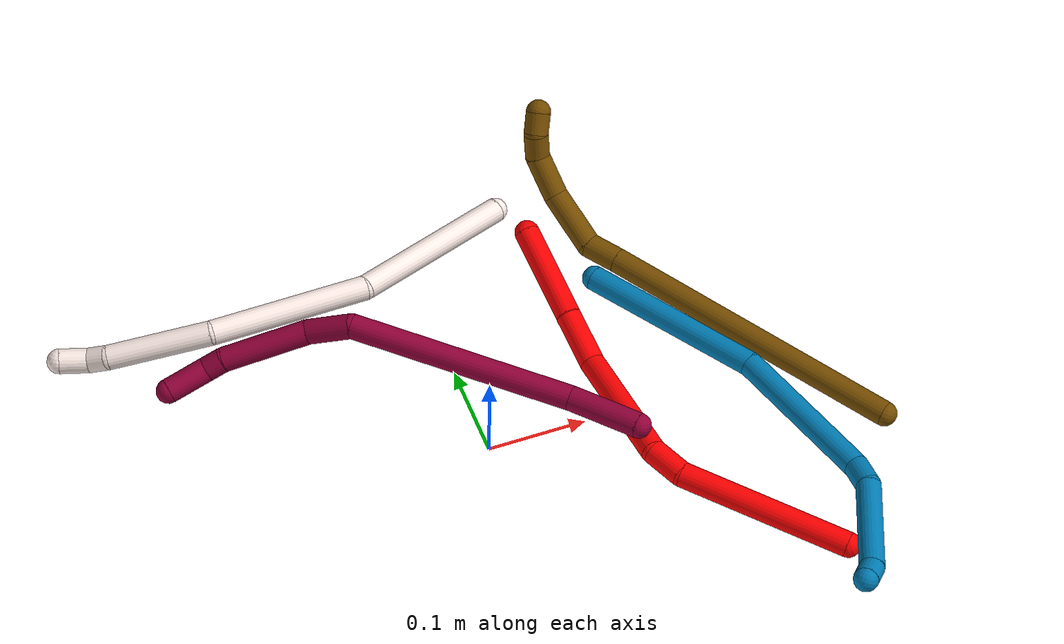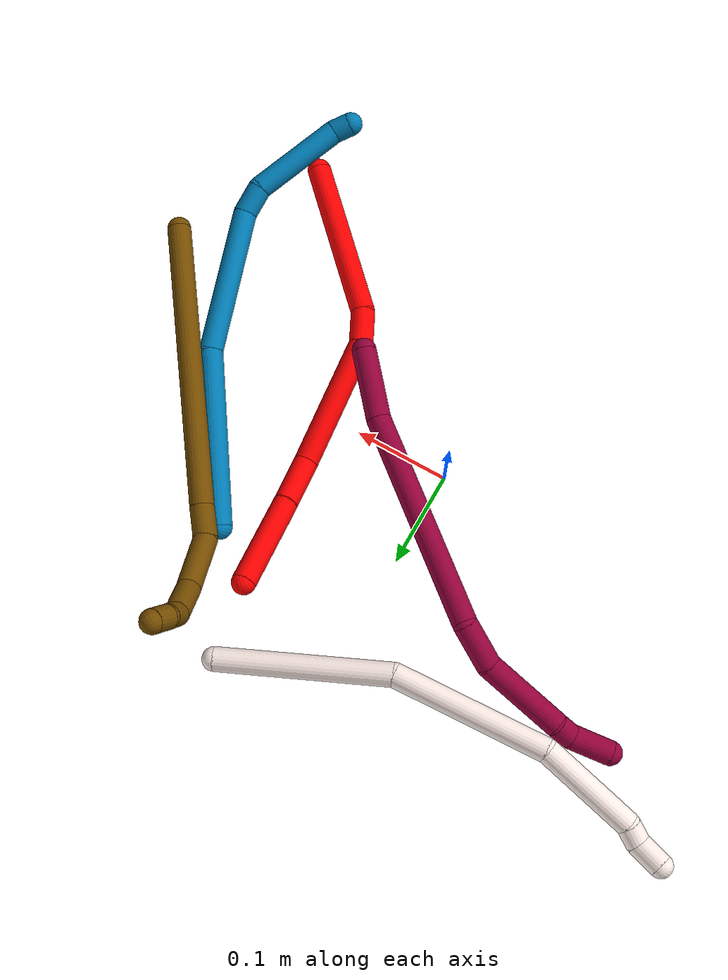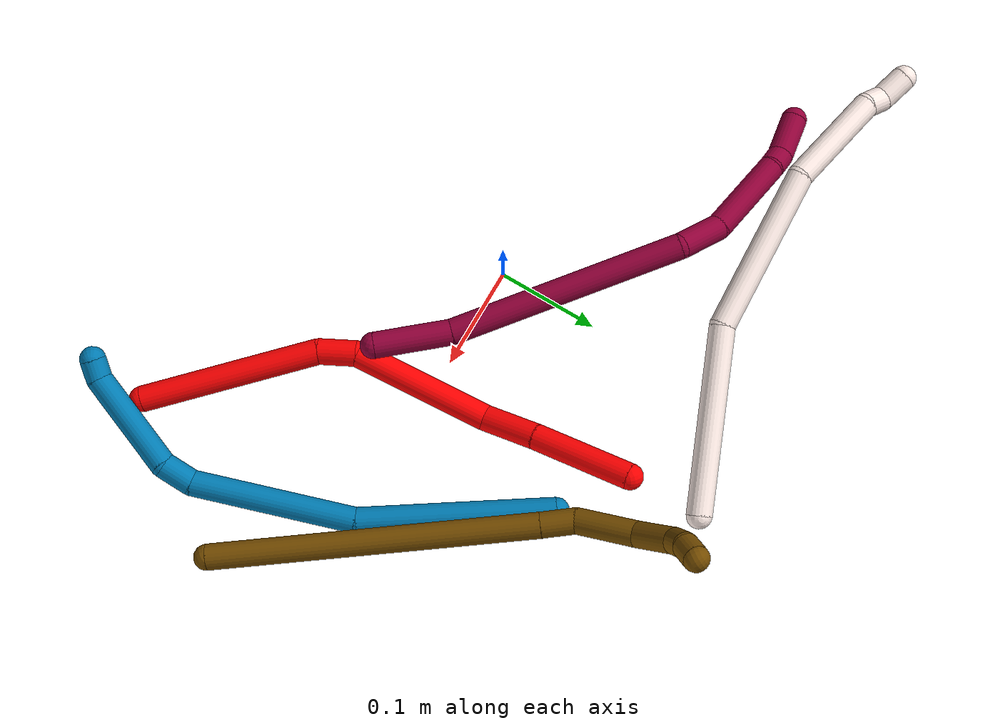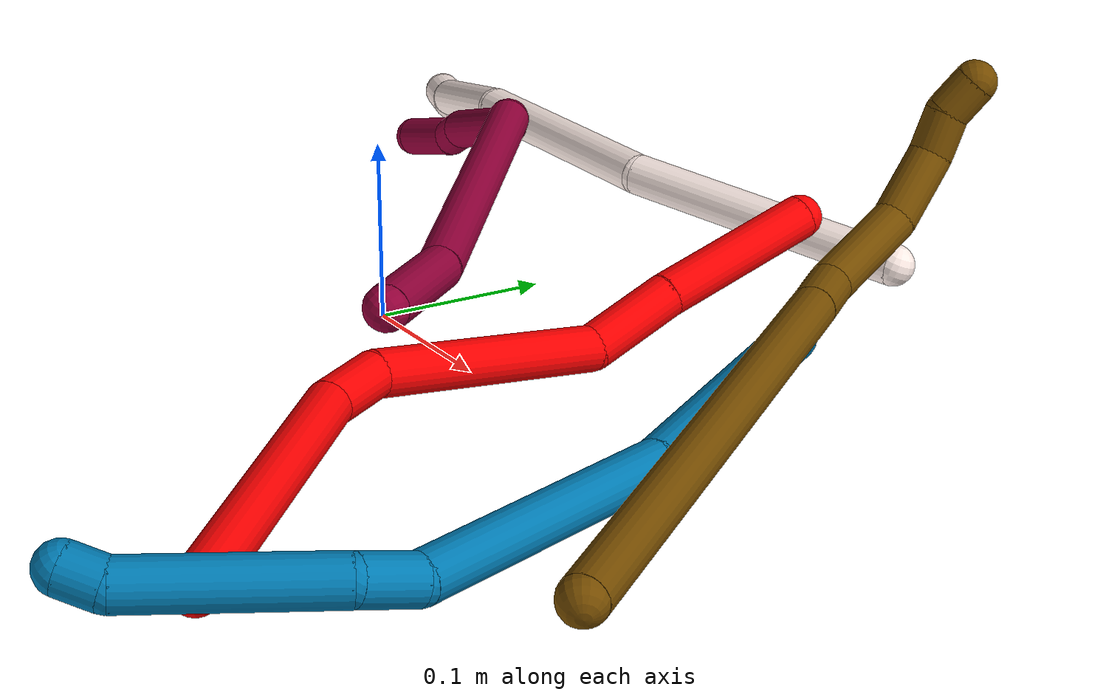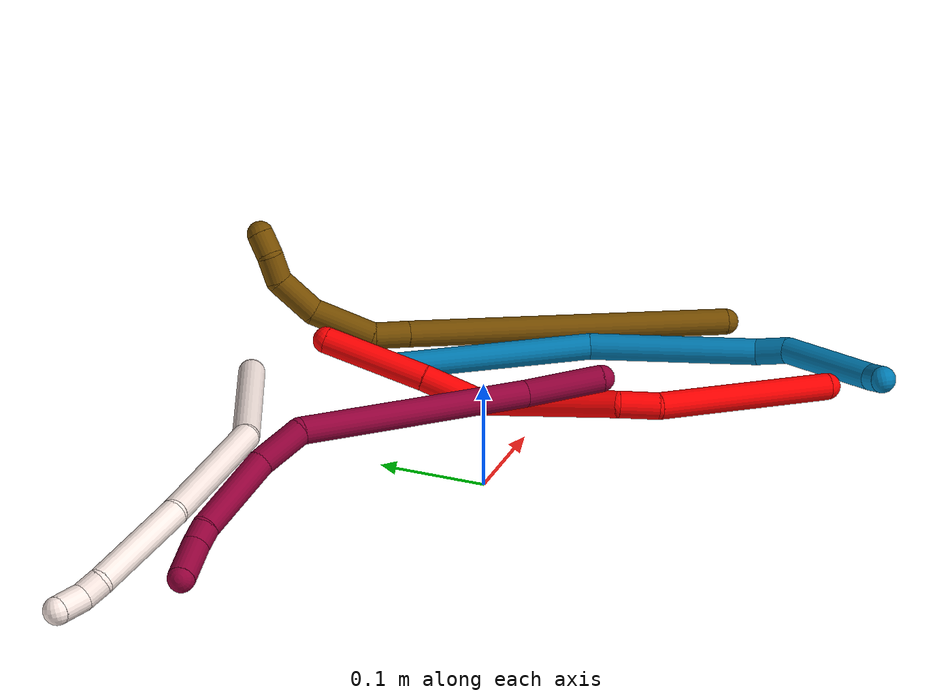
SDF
<sdf version="1.7">
 <world name="default">
  <model name="2">
   <static>0</static>
   <link name="2">
    <collision name="collision-cylinder-e_1_1_4">
     <pose>-0.037078 0.033559 -0.071288 -2.70161 -0.439841 1.57046</pose>
     <geometry><cylinder><radius>0.0125</radius><length>0.174161</length></cylinder></geometry>
     <surface>
      <friction><ode><mu>1.16</mu><mu2>1.16</mu2><slip1>0</slip1><slip2>0</slip2></ode></friction>
      <contact><ode><kp>1e+06</kp><kd>1</kd><max_vel>0</max_vel><min_depth>0.001</min_depth></ode></contact>
     </surface>
    </collision>
    <visual name="visual-cylinder-e_1_1_4">
     <pose>-0.037078 0.033559 -0.071288 -2.70161 -0.439841 1.57046</pose>
     <geometry><cylinder><radius>0.0125</radius><length>0.174161</length></cylinder></geometry>
     <material><ambient>1 0 0 1</ambient></material>
    </visual>
    <collision name="collision-cylinder-e_2_4_5">
     <pose>-0.079012 0.079034 -0.155837 -2.40962 -0.265891 0.67147</pose>
     <geometry><cylinder><radius>0.0125</radius><length>0.036954</length></cylinder></geometry>
     <surface>
      <friction><ode><mu>1.16</mu><mu2>1.16</mu2><slip1>0</slip1><slip2>0</slip2></ode></friction>
      <contact><ode><kp>1e+06</kp><kd>1</kd><max_vel>0</max_vel><min_depth>0.001</min_depth></ode></contact>
     </surface>
    </collision>
    <visual name="visual-cylinder-e_2_4_5">
     <pose>-0.079012 0.079034 -0.155837 -2.40962 -0.265891 0.67147</pose>
     <geometry><cylinder><radius>0.0125</radius><length>0.036954</length></cylinder></geometry>
     <material><ambient>1 0 0 1</ambient></material>
    </visual>
    <collision name="collision-cylinder-e_3_5_6">
     <pose>-0.075128 0.144141 -0.210238 -2.22912 0.129239 -0.262194</pose>
     <geometry><cylinder><radius>0.0125</radius><length>0.13562</length></cylinder></geometry>
     <surface>
      <friction><ode><mu>1.16</mu><mu2>1.16</mu2><slip1>0</slip1><slip2>0</slip2></ode></friction>
      <contact><ode><kp>1e+06</kp><kd>1</kd><max_vel>0</max_vel><min_depth>0.001</min_depth></ode></contact>
     </surface>
    </collision>
    <visual name="visual-cylinder-e_3_5_6">
     <pose>-0.075128 0.144141 -0.210238 -2.22912 0.129239 -0.262194</pose>
     <geometry><cylinder><radius>0.0125</radius><length>0.13562</length></cylinder></geometry>
     <material><ambient>1 0 0 1</ambient></material>
    </visual>
    <collision name="collision-cylinder-e_4_6_7">
     <pose>-0.073615 0.221529 -0.261952 -1.98279 -0.267109 0.405043</pose>
     <geometry><cylinder><radius>0.0125</radius><length>0.054754</length></cylinder></geometry>
     <surface>
      <friction><ode><mu>1.16</mu><mu2>1.16</mu2><slip1>0</slip1><slip2>0</slip2></ode></friction>
      <contact><ode><kp>1e+06</kp><kd>1</kd><max_vel>0</max_vel><min_depth>0.001</min_depth></ode></contact>
     </surface>
    </collision>
    <visual name="visual-cylinder-e_4_6_7">
     <pose>-0.073615 0.221529 -0.261952 -1.98279 -0.267109 0.405043</pose>
     <geometry><cylinder><radius>0.0125</radius><length>0.054754</length></cylinder></geometry>
     <material><ambient>1 0 0 1</ambient></material>
    </visual>
    <collision name="collision-cylinder-e_5_7_2">
     <pose>-0.090209 0.289639 -0.292774 -2.00284 -0.191357 0.29765</pose>
     <geometry><cylinder><radius>0.0125</radius><length>0.09851</length></cylinder></geometry>
     <surface>
      <friction><ode><mu>1.16</mu><mu2>1.16</mu2><slip1>0</slip1><slip2>0</slip2></ode></friction>
      <contact><ode><kp>1e+06</kp><kd>1</kd><max_vel>0</max_vel><min_depth>0.001</min_depth></ode></contact>
     </surface>
    </collision>
    <visual name="visual-cylinder-e_5_7_2">
     <pose>-0.090209 0.289639 -0.292774 -2.00284 -0.191357 0.29765</pose>
     <geometry><cylinder><radius>0.0125</radius><length>0.09851</length></cylinder></geometry>
     <material><ambient>1 0 0 1</ambient></material>
    </visual>
    <collision name="collision-sphere-2">
     <pose>-0.099577 0.333552 -0.313022 0 -0 0</pose>
     <geometry><sphere><radius>0.0125</radius></sphere></geometry>
     <surface>
      <friction><ode><mu>1.16</mu><mu2>1.16</mu2><slip1>0</slip1><slip2>0</slip2></ode></friction>
      <contact><ode><kp>1e+06</kp><kd>1</kd><max_vel>0</max_vel><min_depth>0.001</min_depth></ode></contact>
     </surface>
    </collision>
    <visual name="visual-sphere-2">
     <pose>-0.099577 0.333552 -0.313022 0 -0 0</pose>
     <geometry><sphere><radius>0.0125</radius></sphere></geometry>
     <material><ambient>1 0 0 1</ambient></material>
    </visual>
    <collision name="collision-sphere-7">
     <pose>-0.080841 0.245726 -0.272526 0 -0 0</pose>
     <geometry><sphere><radius>0.0125</radius></sphere></geometry>
     <surface>
      <friction><ode><mu>1.16</mu><mu2>1.16</mu2><slip1>0</slip1><slip2>0</slip2></ode></friction>
      <contact><ode><kp>1e+06</kp><kd>1</kd><max_vel>0</max_vel><min_depth>0.001</min_depth></ode></contact>
     </surface>
    </collision>
    <visual name="visual-sphere-7">
     <pose>-0.080841 0.245726 -0.272526 0 -0 0</pose>
     <geometry><sphere><radius>0.0125</radius></sphere></geometry>
     <material><ambient>1 0 0 1</ambient></material>
    </visual>
    <collision name="collision-sphere-6">
     <pose>-0.066389 0.197333 -0.251378 0 -0 0</pose>
     <geometry><sphere><radius>0.0125</radius></sphere></geometry>
     <surface>
      <friction><ode><mu>1.16</mu><mu2>1.16</mu2><slip1>0</slip1><slip2>0</slip2></ode></friction>
      <contact><ode><kp>1e+06</kp><kd>1</kd><max_vel>0</max_vel><min_depth>0.001</min_depth></ode></contact>
     </surface>
    </collision>
    <visual name="visual-sphere-6">
     <pose>-0.066389 0.197333 -0.251378 0 -0 0</pose>
     <geometry><sphere><radius>0.0125</radius></sphere></geometry>
     <material><ambient>1 0 0 1</ambient></material>
    </visual>
    <collision name="collision-sphere-5">
     <pose>-0.083867 0.090949 -0.169098 0 -0 0</pose>
     <geometry><sphere><radius>0.0125</radius></sphere></geometry>
     <surface>
      <friction><ode><mu>1.16</mu><mu2>1.16</mu2><slip1>0</slip1><slip2>0</slip2></ode></friction>
      <contact><ode><kp>1e+06</kp><kd>1</kd><max_vel>0</max_vel><min_depth>0.001</min_depth></ode></contact>
     </surface>
    </collision>
    <visual name="visual-sphere-5">
     <pose>-0.083867 0.090949 -0.169098 0 -0 0</pose>
     <geometry><sphere><radius>0.0125</radius></sphere></geometry>
     <material><ambient>1 0 0 1</ambient></material>
    </visual>
    <collision name="collision-sphere-1">
     <geometry><sphere><radius>0.0125</radius></sphere></geometry>
     <surface>
      <friction><ode><mu>1.16</mu><mu2>1.16</mu2><slip1>0</slip1><slip2>0</slip2></ode></friction>
      <contact><ode><kp>1e+06</kp><kd>1</kd><max_vel>0</max_vel><min_depth>0.001</min_depth></ode></contact>
     </surface>
    </collision>
    <visual name="visual-sphere-1">
     <geometry><sphere><radius>0.0125</radius></sphere></geometry>
     <material><ambient>1 0 0 1</ambient></material>
    </visual>
    <collision name="collision-sphere-4">
     <pose>-0.074157 0.067119 -0.142576 0 -0 0</pose>
     <geometry><sphere><radius>0.0125</radius></sphere></geometry>
     <surface>
      <friction><ode><mu>1.16</mu><mu2>1.16</mu2><slip1>0</slip1><slip2>0</slip2></ode></friction>
      <contact><ode><kp>1e+06</kp><kd>1</kd><max_vel>0</max_vel><min_depth>0.001</min_depth></ode></contact>
     </surface>
    </collision>
    <visual name="visual-sphere-4">
     <pose>-0.074157 0.067119 -0.142576 0 -0 0</pose>
     <geometry><sphere><radius>0.0125</radius></sphere></geometry>
     <material><ambient>1 0 0 1</ambient></material>
    </visual>
    <inertial>
     <pose>-0.064967 0.137952 -0.179742 0 -0 0</pose>
     <mass>0.5</mass>
     <inertia>
      <ixx>0.000676</ixx>
      <ixy>0</ixy>
      <ixz>0</ixz>
      <iyy>0.000334</iyy>
      <iyz>0</iyz>
      <izz>-0.000272</izz>
     </inertia>
    </inertial>
   </link>
   <pose>0.280103 -0.232331 0.011497 0.620139 0.934656 0.128819</pose>
  </model>
  <model name="8">
   <static>0</static>
   <link name="8">
    <collision name="collision-cylinder-e_1_1_4">
     <pose>-0.022208 0.026426 0.013334 -1.1035 -0.643683 0.404844</pose>
     <geometry><cylinder><radius>0.0125</radius><length>0.074008</length></cylinder></geometry>
     <surface>
      <friction><ode><mu>1.16</mu><mu2>1.16</mu2><slip1>0</slip1><slip2>0</slip2></ode></friction>
      <contact><ode><kp>1e+06</kp><kd>1</kd><max_vel>0</max_vel><min_depth>0.001</min_depth></ode></contact>
     </surface>
    </collision>
    <visual name="visual-cylinder-e_1_1_4">
     <pose>-0.022208 0.026426 0.013334 -1.1035 -0.643683 0.404844</pose>
     <geometry><cylinder><radius>0.0125</radius><length>0.074008</length></cylinder></geometry>
     <material><ambient>0.584314 0 0.227451 1</ambient></material>
    </visual>
    <collision name="collision-cylinder-e_2_4_5">
     <pose>-0.103578 0.127227 0.088739 -0.875331 -0.548261 0.261671</pose>
     <geometry><cylinder><radius>0.0125</radius><length>0.227023</length></cylinder></geometry>
     <surface>
      <friction><ode><mu>1.16</mu><mu2>1.16</mu2><slip1>0</slip1><slip2>0</slip2></ode></friction>
      <contact><ode><kp>1e+06</kp><kd>1</kd><max_vel>0</max_vel><min_depth>0.001</min_depth></ode></contact>
     </surface>
    </collision>
    <visual name="visual-cylinder-e_2_4_5">
     <pose>-0.103578 0.127227 0.088739 -0.875331 -0.548261 0.261671</pose>
     <geometry><cylinder><radius>0.0125</radius><length>0.227023</length></cylinder></geometry>
     <material><ambient>0.584314 0 0.227451 1</ambient></material>
    </visual>
    <collision name="collision-cylinder-e_3_5_6">
     <pose>-0.182676 0.209091 0.161028 -0.632384 -1.00474 0.355683</pose>
     <geometry><cylinder><radius>0.0125</radius><length>0.047239</length></cylinder></geometry>
     <surface>
      <friction><ode><mu>1.16</mu><mu2>1.16</mu2><slip1>0</slip1><slip2>0</slip2></ode></friction>
      <contact><ode><kp>1e+06</kp><kd>1</kd><max_vel>0</max_vel><min_depth>0.001</min_depth></ode></contact>
     </surface>
    </collision>
    <visual name="visual-cylinder-e_3_5_6">
     <pose>-0.182676 0.209091 0.161028 -0.632384 -1.00474 0.355683</pose>
     <geometry><cylinder><radius>0.0125</radius><length>0.047239</length></cylinder></geometry>
     <material><ambient>0.584314 0 0.227451 1</ambient></material>
    </visual>
    <collision name="collision-cylinder-e_4_6_7">
     <pose>-0.236008 0.220674 0.200124 -0.140912 -0.852908 0.064105</pose>
     <geometry><cylinder><radius>0.0125</radius><length>0.08868</length></cylinder></geometry>
     <surface>
      <friction><ode><mu>1.16</mu><mu2>1.16</mu2><slip1>0</slip1><slip2>0</slip2></ode></friction>
      <contact><ode><kp>1e+06</kp><kd>1</kd><max_vel>0</max_vel><min_depth>0.001</min_depth></ode></contact>
     </surface>
    </collision>
    <visual name="visual-cylinder-e_4_6_7">
     <pose>-0.236008 0.220674 0.200124 -0.140912 -0.852908 0.064105</pose>
     <geometry><cylinder><radius>0.0125</radius><length>0.08868</length></cylinder></geometry>
     <material><ambient>0.584314 0 0.227451 1</ambient></material>
    </visual>
    <collision name="collision-cylinder-e_5_7_8">
     <pose>-0.278011 0.22412 0.234114 0.126623 -1.03121 -0.071828</pose>
     <geometry><cylinder><radius>0.0125</radius><length>0.020062</length></cylinder></geometry>
     <surface>
      <friction><ode><mu>1.16</mu><mu2>1.16</mu2><slip1>0</slip1><slip2>0</slip2></ode></friction>
      <contact><ode><kp>1e+06</kp><kd>1</kd><max_vel>0</max_vel><min_depth>0.001</min_depth></ode></contact>
     </surface>
    </collision>
    <visual name="visual-cylinder-e_5_7_8">
     <pose>-0.278011 0.22412 0.234114 0.126623 -1.03121 -0.071828</pose>
     <geometry><cylinder><radius>0.0125</radius><length>0.020062</length></cylinder></geometry>
     <material><ambient>0.584314 0 0.227451 1</ambient></material>
    </visual>
    <collision name="collision-cylinder-e_6_8_2">
     <pose>-0.299982 0.21998 0.255694 0.208757 -0.671042 -0.073028</pose>
     <geometry><cylinder><radius>0.0125</radius><length>0.042988</length></cylinder></geometry>
     <surface>
      <friction><ode><mu>1.16</mu><mu2>1.16</mu2><slip1>0</slip1><slip2>0</slip2></ode></friction>
      <contact><ode><kp>1e+06</kp><kd>1</kd><max_vel>0</max_vel><min_depth>0.001</min_depth></ode></contact>
     </surface>
    </collision>
    <visual name="visual-cylinder-e_6_8_2">
     <pose>-0.299982 0.21998 0.255694 0.208757 -0.671042 -0.073028</pose>
     <geometry><cylinder><radius>0.0125</radius><length>0.042988</length></cylinder></geometry>
     <material><ambient>0.584314 0 0.227451 1</ambient></material>
    </visual>
    <collision name="collision-sphere-2">
     <pose>-0.313347 0.216492 0.272162 0 -0 0</pose>
     <geometry><sphere><radius>0.0125</radius></sphere></geometry>
     <surface>
      <friction><ode><mu>1.16</mu><mu2>1.16</mu2><slip1>0</slip1><slip2>0</slip2></ode></friction>
      <contact><ode><kp>1e+06</kp><kd>1</kd><max_vel>0</max_vel><min_depth>0.001</min_depth></ode></contact>
     </surface>
    </collision>
    <visual name="visual-sphere-2">
     <pose>-0.313347 0.216492 0.272162 0 -0 0</pose>
     <geometry><sphere><radius>0.0125</radius></sphere></geometry>
     <material><ambient>0.584314 0 0.227451 1</ambient></material>
    </visual>
    <collision name="collision-sphere-4">
     <pose>-0.044416 0.052852 0.026668 0 -0 0</pose>
     <geometry><sphere><radius>0.0125</radius></sphere></geometry>
     <surface>
      <friction><ode><mu>1.16</mu><mu2>1.16</mu2><slip1>0</slip1><slip2>0</slip2></ode></friction>
      <contact><ode><kp>1e+06</kp><kd>1</kd><max_vel>0</max_vel><min_depth>0.001</min_depth></ode></contact>
     </surface>
    </collision>
    <visual name="visual-sphere-4">
     <pose>-0.044416 0.052852 0.026668 0 -0 0</pose>
     <geometry><sphere><radius>0.0125</radius></sphere></geometry>
     <material><ambient>0.584314 0 0.227451 1</ambient></material>
    </visual>
    <collision name="collision-sphere-1">
     <geometry><sphere><radius>0.0125</radius></sphere></geometry>
     <surface>
      <friction><ode><mu>1.16</mu><mu2>1.16</mu2><slip1>0</slip1><slip2>0</slip2></ode></friction>
      <contact><ode><kp>1e+06</kp><kd>1</kd><max_vel>0</max_vel><min_depth>0.001</min_depth></ode></contact>
     </surface>
    </collision>
    <visual name="visual-sphere-1">
     <geometry><sphere><radius>0.0125</radius></sphere></geometry>
     <material><ambient>0.584314 0 0.227451 1</ambient></material>
    </visual>
    <collision name="collision-sphere-8">
     <pose>-0.286617 0.223469 0.239226 0 -0 0</pose>
     <geometry><sphere><radius>0.0125</radius></sphere></geometry>
     <surface>
      <friction><ode><mu>1.16</mu><mu2>1.16</mu2><slip1>0</slip1><slip2>0</slip2></ode></friction>
      <contact><ode><kp>1e+06</kp><kd>1</kd><max_vel>0</max_vel><min_depth>0.001</min_depth></ode></contact>
     </surface>
    </collision>
    <visual name="visual-sphere-8">
     <pose>-0.286617 0.223469 0.239226 0 -0 0</pose>
     <geometry><sphere><radius>0.0125</radius></sphere></geometry>
     <material><ambient>0.584314 0 0.227451 1</ambient></material>
    </visual>
    <collision name="collision-sphere-5">
     <pose>-0.162741 0.201603 0.150811 0 -0 0</pose>
     <geometry><sphere><radius>0.0125</radius></sphere></geometry>
     <surface>
      <friction><ode><mu>1.16</mu><mu2>1.16</mu2><slip1>0</slip1><slip2>0</slip2></ode></friction>
      <contact><ode><kp>1e+06</kp><kd>1</kd><max_vel>0</max_vel><min_depth>0.001</min_depth></ode></contact>
     </surface>
    </collision>
    <visual name="visual-sphere-5">
     <pose>-0.162741 0.201603 0.150811 0 -0 0</pose>
     <geometry><sphere><radius>0.0125</radius></sphere></geometry>
     <material><ambient>0.584314 0 0.227451 1</ambient></material>
    </visual>
    <collision name="collision-sphere-6">
     <pose>-0.202612 0.216578 0.171246 0 -0 0</pose>
     <geometry><sphere><radius>0.0125</radius></sphere></geometry>
     <surface>
      <friction><ode><mu>1.16</mu><mu2>1.16</mu2><slip1>0</slip1><slip2>0</slip2></ode></friction>
      <contact><ode><kp>1e+06</kp><kd>1</kd><max_vel>0</max_vel><min_depth>0.001</min_depth></ode></contact>
     </surface>
    </collision>
    <visual name="visual-sphere-6">
     <pose>-0.202612 0.216578 0.171246 0 -0 0</pose>
     <geometry><sphere><radius>0.0125</radius></sphere></geometry>
     <material><ambient>0.584314 0 0.227451 1</ambient></material>
    </visual>
    <collision name="collision-sphere-7">
     <pose>-0.269405 0.224771 0.229001 0 -0 0</pose>
     <geometry><sphere><radius>0.0125</radius></sphere></geometry>
     <surface>
      <friction><ode><mu>1.16</mu><mu2>1.16</mu2><slip1>0</slip1><slip2>0</slip2></ode></friction>
      <contact><ode><kp>1e+06</kp><kd>1</kd><max_vel>0</max_vel><min_depth>0.001</min_depth></ode></contact>
     </surface>
    </collision>
    <visual name="visual-sphere-7">
     <pose>-0.269405 0.224771 0.229001 0 -0 0</pose>
     <geometry><sphere><radius>0.0125</radius></sphere></geometry>
     <material><ambient>0.584314 0 0.227451 1</ambient></material>
    </visual>
    <inertial>
     <pose>-0.14638 0.148477 0.12435 0 -0 0</pose>
     <mass>0.5</mass>
     <inertia>
      <ixx>0.001099</ixx>
      <ixy>0</ixy>
      <ixz>0</ixz>
      <iyy>0.001064</iyy>
      <iyz>0</iyz>
      <izz>-6.1e-05</izz>
     </inertia>
    </inertial>
   </link>
   <pose>0.130149 -0.063149 0.057517 0.699971 -0.935704 -0.536804</pose>
  </model>
  <model name="9">
   <static>0</static>
   <link name="9">
    <collision name="collision-cylinder-e_1_1_4">
     <pose>0.074776 -0.056831 -0.007721 1.70583 0.916504 1.0283</pose>
     <geometry><cylinder><radius>0.0125</radius><length>0.188476</length></cylinder></geometry>
     <surface>
      <friction><ode><mu>1.16</mu><mu2>1.16</mu2><slip1>0</slip1><slip2>0</slip2></ode></friction>
      <contact><ode><kp>1e+06</kp><kd>1</kd><max_vel>0</max_vel><min_depth>0.001</min_depth></ode></contact>
     </surface>
    </collision>
    <visual name="visual-cylinder-e_1_1_4">
     <pose>0.074776 -0.056831 -0.007721 1.70583 0.916504 1.0283</pose>
     <geometry><cylinder><radius>0.0125</radius><length>0.188476</length></cylinder></geometry>
     <material><ambient>0 0.490196 0.709804 1</ambient></material>
    </visual>
    <collision name="collision-cylinder-e_2_4_5">
     <pose>0.199148 -0.172518 -0.0355 1.89924 0.673291 0.909606</pose>
     <geometry><cylinder><radius>0.0125</radius><length>0.159073</length></cylinder></geometry>
     <surface>
      <friction><ode><mu>1.16</mu><mu2>1.16</mu2><slip1>0</slip1><slip2>0</slip2></ode></friction>
      <contact><ode><kp>1e+06</kp><kd>1</kd><max_vel>0</max_vel><min_depth>0.001</min_depth></ode></contact>
     </surface>
    </collision>
    <visual name="visual-cylinder-e_2_4_5">
     <pose>0.199148 -0.172518 -0.0355 1.89924 0.673291 0.909606</pose>
     <geometry><cylinder><radius>0.0125</radius><length>0.159073</length></cylinder></geometry>
     <material><ambient>0 0.490196 0.709804 1</ambient></material>
    </visual>
    <collision name="collision-cylinder-e_3_5_6">
     <pose>0.253012 -0.246057 -0.059003 1.80134 0.275756 0.346683</pose>
     <geometry><cylinder><radius>0.0125</radius><length>0.031348</length></cylinder></geometry>
     <surface>
      <friction><ode><mu>1.16</mu><mu2>1.16</mu2><slip1>0</slip1><slip2>0</slip2></ode></friction>
      <contact><ode><kp>1e+06</kp><kd>1</kd><max_vel>0</max_vel><min_depth>0.001</min_depth></ode></contact>
     </surface>
    </collision>
    <visual name="visual-cylinder-e_3_5_6">
     <pose>0.253012 -0.246057 -0.059003 1.80134 0.275756 0.346683</pose>
     <geometry><cylinder><radius>0.0125</radius><length>0.031348</length></cylinder></geometry>
     <material><ambient>0 0.490196 0.709804 1</ambient></material>
    </visual>
    <collision name="collision-cylinder-e_4_6_7">
     <pose>0.257352 -0.304665 -0.087404 2.08744 0.001441 0.002476</pose>
     <geometry><cylinder><radius>0.0125</radius><length>0.101038</length></cylinder></geometry>
     <surface>
      <friction><ode><mu>1.16</mu><mu2>1.16</mu2><slip1>0</slip1><slip2>0</slip2></ode></friction>
      <contact><ode><kp>1e+06</kp><kd>1</kd><max_vel>0</max_vel><min_depth>0.001</min_depth></ode></contact>
     </surface>
    </collision>
    <visual name="visual-cylinder-e_4_6_7">
     <pose>0.257352 -0.304665 -0.087404 2.08744 0.001441 0.002476</pose>
     <geometry><cylinder><radius>0.0125</radius><length>0.101038</length></cylinder></geometry>
     <material><ambient>0 0.490196 0.709804 1</ambient></material>
    </visual>
    <collision name="collision-cylinder-e_5_7_2">
     <pose>0.253604 -0.357227 -0.115744 1.9444 -0.390723 -0.564737</pose>
     <geometry><cylinder><radius>0.0125</radius><length>0.020064</length></cylinder></geometry>
     <surface>
      <friction><ode><mu>1.16</mu><mu2>1.16</mu2><slip1>0</slip1><slip2>0</slip2></ode></friction>
      <contact><ode><kp>1e+06</kp><kd>1</kd><max_vel>0</max_vel><min_depth>0.001</min_depth></ode></contact>
     </surface>
    </collision>
    <visual name="visual-cylinder-e_5_7_2">
     <pose>0.253604 -0.357227 -0.115744 1.9444 -0.390723 -0.564737</pose>
     <geometry><cylinder><radius>0.0125</radius><length>0.020064</length></cylinder></geometry>
     <material><ambient>0 0.490196 0.709804 1</ambient></material>
    </visual>
    <collision name="collision-sphere-2">
     <pose>0.249783 -0.365863 -0.119129 0 -0 0</pose>
     <geometry><sphere><radius>0.0125</radius></sphere></geometry>
     <surface>
      <friction><ode><mu>1.16</mu><mu2>1.16</mu2><slip1>0</slip1><slip2>0</slip2></ode></friction>
      <contact><ode><kp>1e+06</kp><kd>1</kd><max_vel>0</max_vel><min_depth>0.001</min_depth></ode></contact>
     </surface>
    </collision>
    <visual name="visual-sphere-2">
     <pose>0.249783 -0.365863 -0.119129 0 -0 0</pose>
     <geometry><sphere><radius>0.0125</radius></sphere></geometry>
     <material><ambient>0 0.490196 0.709804 1</ambient></material>
    </visual>
    <collision name="collision-sphere-7">
     <pose>0.257425 -0.34859 -0.112358 0 -0 0</pose>
     <geometry><sphere><radius>0.0125</radius></sphere></geometry>
     <surface>
      <friction><ode><mu>1.16</mu><mu2>1.16</mu2><slip1>0</slip1><slip2>0</slip2></ode></friction>
      <contact><ode><kp>1e+06</kp><kd>1</kd><max_vel>0</max_vel><min_depth>0.001</min_depth></ode></contact>
     </surface>
    </collision>
    <visual name="visual-sphere-7">
     <pose>0.257425 -0.34859 -0.112358 0 -0 0</pose>
     <geometry><sphere><radius>0.0125</radius></sphere></geometry>
     <material><ambient>0 0.490196 0.709804 1</ambient></material>
    </visual>
    <collision name="collision-sphere-6">
     <pose>0.257279 -0.26074 -0.062449 0 -0 0</pose>
     <geometry><sphere><radius>0.0125</radius></sphere></geometry>
     <surface>
      <friction><ode><mu>1.16</mu><mu2>1.16</mu2><slip1>0</slip1><slip2>0</slip2></ode></friction>
      <contact><ode><kp>1e+06</kp><kd>1</kd><max_vel>0</max_vel><min_depth>0.001</min_depth></ode></contact>
     </surface>
    </collision>
    <visual name="visual-sphere-6">
     <pose>0.257279 -0.26074 -0.062449 0 -0 0</pose>
     <geometry><sphere><radius>0.0125</radius></sphere></geometry>
     <material><ambient>0 0.490196 0.709804 1</ambient></material>
    </visual>
    <collision name="collision-sphere-5">
     <pose>0.248744 -0.231374 -0.055557 0 -0 0</pose>
     <geometry><sphere><radius>0.0125</radius></sphere></geometry>
     <surface>
      <friction><ode><mu>1.16</mu><mu2>1.16</mu2><slip1>0</slip1><slip2>0</slip2></ode></friction>
      <contact><ode><kp>1e+06</kp><kd>1</kd><max_vel>0</max_vel><min_depth>0.001</min_depth></ode></contact>
     </surface>
    </collision>
    <visual name="visual-sphere-5">
     <pose>0.248744 -0.231374 -0.055557 0 -0 0</pose>
     <geometry><sphere><radius>0.0125</radius></sphere></geometry>
     <material><ambient>0 0.490196 0.709804 1</ambient></material>
    </visual>
    <collision name="collision-sphere-1">
     <geometry><sphere><radius>0.0125</radius></sphere></geometry>
     <surface>
      <friction><ode><mu>1.16</mu><mu2>1.16</mu2><slip1>0</slip1><slip2>0</slip2></ode></friction>
      <contact><ode><kp>1e+06</kp><kd>1</kd><max_vel>0</max_vel><min_depth>0.001</min_depth></ode></contact>
     </surface>
    </collision>
    <visual name="visual-sphere-1">
     <geometry><sphere><radius>0.0125</radius></sphere></geometry>
     <material><ambient>0 0.490196 0.709804 1</ambient></material>
    </visual>
    <collision name="collision-sphere-4">
     <pose>0.149552 -0.113662 -0.015442 0 -0 0</pose>
     <geometry><sphere><radius>0.0125</radius></sphere></geometry>
     <surface>
      <friction><ode><mu>1.16</mu><mu2>1.16</mu2><slip1>0</slip1><slip2>0</slip2></ode></friction>
      <contact><ode><kp>1e+06</kp><kd>1</kd><max_vel>0</max_vel><min_depth>0.001</min_depth></ode></contact>
     </surface>
    </collision>
    <visual name="visual-sphere-4">
     <pose>0.149552 -0.113662 -0.015442 0 -0 0</pose>
     <geometry><sphere><radius>0.0125</radius></sphere></geometry>
     <material><ambient>0 0.490196 0.709804 1</ambient></material>
    </visual>
    <inertial>
     <pose>0.16959 -0.167636 -0.040211 0 -0 0</pose>
     <mass>0.5</mass>
     <inertia><ixx>0.000962</ixx><ixy>0</ixy><ixz>0</ixz><iyy>0.000865</iyy><iyz>0</iyz><izz>5e-06</izz></inertia>
    </inertial>
   </link>
   <pose>0.171362 0.1594 0.01051 -0.582576 0.306768 -0.404096</pose>
  </model>
  <model name="11">
   <static>0</static>
   <link name="11">
    <collision name="collision-cylinder-e_1_1_4">
     <pose>-0.088541 -0.004003 0.016314 0.240612 -1.3833 -0.199556</pose>
     <geometry><cylinder><radius>0.0125</radius><length>0.180241</length></cylinder></geometry>
     <surface>
      <friction><ode><mu>1.16</mu><mu2>1.16</mu2><slip1>0</slip1><slip2>0</slip2></ode></friction>
      <contact><ode><kp>1e+06</kp><kd>1</kd><max_vel>0</max_vel><min_depth>0.001</min_depth></ode></contact>
     </surface>
    </collision>
    <visual name="visual-cylinder-e_1_1_4">
     <pose>-0.088541 -0.004003 0.016314 0.240612 -1.3833 -0.199556</pose>
     <geometry><cylinder><radius>0.0125</radius><length>0.180241</length></cylinder></geometry>
     <material><ambient>1 0.933333 0.909804 1</ambient></material>
    </visual>
    <collision name="collision-cylinder-e_2_4_5">
     <pose>-0.250405 -0.040936 0.047086 1.15711 -1.11478 -0.773217</pose>
     <geometry><cylinder><radius>0.0125</radius><length>0.163336</length></cylinder></geometry>
     <surface>
      <friction><ode><mu>1.16</mu><mu2>1.16</mu2><slip1>0</slip1><slip2>0</slip2></ode></friction>
      <contact><ode><kp>1e+06</kp><kd>1</kd><max_vel>0</max_vel><min_depth>0.001</min_depth></ode></contact>
     </surface>
    </collision>
    <visual name="visual-cylinder-e_2_4_5">
     <pose>-0.250405 -0.040936 0.047086 1.15711 -1.11478 -0.773217</pose>
     <geometry><cylinder><radius>0.0125</radius><length>0.163336</length></cylinder></geometry>
     <material><ambient>1 0.933333 0.909804 1</ambient></material>
    </visual>
    <collision name="collision-cylinder-e_3_5_6">
     <pose>-0.360622 -0.107766 0.077489 1.13112 -0.777757 -0.508877</pose>
     <geometry><cylinder><radius>0.0125</radius><length>0.105158</length></cylinder></geometry>
     <surface>
      <friction><ode><mu>1.16</mu><mu2>1.16</mu2><slip1>0</slip1><slip2>0</slip2></ode></friction>
      <contact><ode><kp>1e+06</kp><kd>1</kd><max_vel>0</max_vel><min_depth>0.001</min_depth></ode></contact>
     </surface>
    </collision>
    <visual name="visual-cylinder-e_3_5_6">
     <pose>-0.360622 -0.107766 0.077489 1.13112 -0.777757 -0.508877</pose>
     <geometry><cylinder><radius>0.0125</radius><length>0.105158</length></cylinder></geometry>
     <material><ambient>1 0.933333 0.909804 1</ambient></material>
    </visual>
    <collision name="collision-cylinder-e_4_6_7">
     <pose>-0.401673 -0.150515 0.097526 1.13776 -0.403033 -0.259771</pose>
     <geometry><cylinder><radius>0.0125</radius><length>0.021199</length></cylinder></geometry>
     <surface>
      <friction><ode><mu>1.16</mu><mu2>1.16</mu2><slip1>0</slip1><slip2>0</slip2></ode></friction>
      <contact><ode><kp>1e+06</kp><kd>1</kd><max_vel>0</max_vel><min_depth>0.001</min_depth></ode></contact>
     </surface>
    </collision>
    <visual name="visual-cylinder-e_4_6_7">
     <pose>-0.401673 -0.150515 0.097526 1.13776 -0.403033 -0.259771</pose>
     <geometry><cylinder><radius>0.0125</radius><length>0.021199</length></cylinder></geometry>
     <material><ambient>1 0.933333 0.909804 1</ambient></material>
    </visual>
    <collision name="collision-cylinder-e_5_7_2">
     <pose>-0.416849 -0.16952 0.102834 1.45155 -0.822667 -0.738627</pose>
     <geometry><cylinder><radius>0.0125</radius><length>0.030065</length></cylinder></geometry>
     <surface>
      <friction><ode><mu>1.16</mu><mu2>1.16</mu2><slip1>0</slip1><slip2>0</slip2></ode></friction>
      <contact><ode><kp>1e+06</kp><kd>1</kd><max_vel>0</max_vel><min_depth>0.001</min_depth></ode></contact>
     </surface>
    </collision>
    <visual name="visual-cylinder-e_5_7_2">
     <pose>-0.416849 -0.16952 0.102834 1.45155 -0.822667 -0.738627</pose>
     <geometry><cylinder><radius>0.0125</radius><length>0.030065</length></cylinder></geometry>
     <material><ambient>1 0.933333 0.909804 1</ambient></material>
    </visual>
    <collision name="collision-sphere-2">
     <pose>-0.427867 -0.179673 0.10405 0 -0 0</pose>
     <geometry><sphere><radius>0.0125</radius></sphere></geometry>
     <surface>
      <friction><ode><mu>1.16</mu><mu2>1.16</mu2><slip1>0</slip1><slip2>0</slip2></ode></friction>
      <contact><ode><kp>1e+06</kp><kd>1</kd><max_vel>0</max_vel><min_depth>0.001</min_depth></ode></contact>
     </surface>
    </collision>
    <visual name="visual-sphere-2">
     <pose>-0.427867 -0.179673 0.10405 0 -0 0</pose>
     <geometry><sphere><radius>0.0125</radius></sphere></geometry>
     <material><ambient>1 0.933333 0.909804 1</ambient></material>
    </visual>
    <collision name="collision-sphere-7">
     <pose>-0.40583 -0.159366 0.101617 0 -0 0</pose>
     <geometry><sphere><radius>0.0125</radius></sphere></geometry>
     <surface>
      <friction><ode><mu>1.16</mu><mu2>1.16</mu2><slip1>0</slip1><slip2>0</slip2></ode></friction>
      <contact><ode><kp>1e+06</kp><kd>1</kd><max_vel>0</max_vel><min_depth>0.001</min_depth></ode></contact>
     </surface>
    </collision>
    <visual name="visual-sphere-7">
     <pose>-0.40583 -0.159366 0.101617 0 -0 0</pose>
     <geometry><sphere><radius>0.0125</radius></sphere></geometry>
     <material><ambient>1 0.933333 0.909804 1</ambient></material>
    </visual>
    <collision name="collision-sphere-6">
     <pose>-0.397516 -0.141665 0.093434 0 -0 0</pose>
     <geometry><sphere><radius>0.0125</radius></sphere></geometry>
     <surface>
      <friction><ode><mu>1.16</mu><mu2>1.16</mu2><slip1>0</slip1><slip2>0</slip2></ode></friction>
      <contact><ode><kp>1e+06</kp><kd>1</kd><max_vel>0</max_vel><min_depth>0.001</min_depth></ode></contact>
     </surface>
    </collision>
    <visual name="visual-sphere-6">
     <pose>-0.397516 -0.141665 0.093434 0 -0 0</pose>
     <geometry><sphere><radius>0.0125</radius></sphere></geometry>
     <material><ambient>1 0.933333 0.909804 1</ambient></material>
    </visual>
    <collision name="collision-sphere-5">
     <pose>-0.323728 -0.073867 0.061543 0 -0 0</pose>
     <geometry><sphere><radius>0.0125</radius></sphere></geometry>
     <surface>
      <friction><ode><mu>1.16</mu><mu2>1.16</mu2><slip1>0</slip1><slip2>0</slip2></ode></friction>
      <contact><ode><kp>1e+06</kp><kd>1</kd><max_vel>0</max_vel><min_depth>0.001</min_depth></ode></contact>
     </surface>
    </collision>
    <visual name="visual-sphere-5">
     <pose>-0.323728 -0.073867 0.061543 0 -0 0</pose>
     <geometry><sphere><radius>0.0125</radius></sphere></geometry>
     <material><ambient>1 0.933333 0.909804 1</ambient></material>
    </visual>
    <collision name="collision-sphere-1">
     <geometry><sphere><radius>0.0125</radius></sphere></geometry>
     <surface>
      <friction><ode><mu>1.16</mu><mu2>1.16</mu2><slip1>0</slip1><slip2>0</slip2></ode></friction>
      <contact><ode><kp>1e+06</kp><kd>1</kd><max_vel>0</max_vel><min_depth>0.001</min_depth></ode></contact>
     </surface>
    </collision>
    <visual name="visual-sphere-1">
     <geometry><sphere><radius>0.0125</radius></sphere></geometry>
     <material><ambient>1 0.933333 0.909804 1</ambient></material>
    </visual>
    <collision name="collision-sphere-4">
     <pose>-0.177082 -0.008006 0.032629 0 -0 0</pose>
     <geometry><sphere><radius>0.0125</radius></sphere></geometry>
     <surface>
      <friction><ode><mu>1.16</mu><mu2>1.16</mu2><slip1>0</slip1><slip2>0</slip2></ode></friction>
      <contact><ode><kp>1e+06</kp><kd>1</kd><max_vel>0</max_vel><min_depth>0.001</min_depth></ode></contact>
     </surface>
    </collision>
    <visual name="visual-sphere-4">
     <pose>-0.177082 -0.008006 0.032629 0 -0 0</pose>
     <geometry><sphere><radius>0.0125</radius></sphere></geometry>
     <material><ambient>1 0.933333 0.909804 1</ambient></material>
    </visual>
    <inertial>
     <pose>-0.231658 -0.054056 0.047878 0 -0 0</pose>
     <mass>0.5</mass>
     <inertia><ixx>7.1e-05</ixx><ixy>0</ixy><ixz>0</ixz><iyy>0.000701</iyy><iyz>0</iyz><izz>0.00114</izz></inertia>
    </inertial>
   </link>
   <pose>0.107846 0.277705 0.011509 2.92976 0.31821 0.412333</pose>
  </model>
  <model name="12">
   <static>0</static>
   <link name="12">
    <collision name="collision-cylinder-e_1_1_4">
     <pose>-0.045191 0.053523 -0.140378 -2.77733 -0.292192 1.3482</pose>
     <geometry><cylinder><radius>0.0125</radius><length>0.313771</length></cylinder></geometry>
     <surface>
      <friction><ode><mu>1.16</mu><mu2>1.16</mu2><slip1>0</slip1><slip2>0</slip2></ode></friction>
      <contact><ode><kp>1e+06</kp><kd>1</kd><max_vel>0</max_vel><min_depth>0.001</min_depth></ode></contact>
     </surface>
    </collision>
    <visual name="visual-cylinder-e_1_1_4">
     <pose>-0.045191 0.053523 -0.140378 -2.77733 -0.292192 1.3482</pose>
     <geometry><cylinder><radius>0.0125</radius><length>0.313771</length></cylinder></geometry>
     <material><ambient>0.466667 0.301961 0 1</ambient></material>
    </visual>
    <collision name="collision-cylinder-e_2_4_5">
     <pose>-0.094754 0.112686 -0.295877 -2.78458 -0.264542 1.27078</pose>
     <geometry><cylinder><radius>0.0125</radius><length>0.033438</length></cylinder></geometry>
     <surface>
      <friction><ode><mu>1.16</mu><mu2>1.16</mu2><slip1>0</slip1><slip2>0</slip2></ode></friction>
      <contact><ode><kp>1e+06</kp><kd>1</kd><max_vel>0</max_vel><min_depth>0.001</min_depth></ode></contact>
     </surface>
    </collision>
    <visual name="visual-cylinder-e_2_4_5">
     <pose>-0.094754 0.112686 -0.295877 -2.78458 -0.264542 1.27078</pose>
     <geometry><cylinder><radius>0.0125</radius><length>0.033438</length></cylinder></geometry>
     <material><ambient>0.466667 0.301961 0 1</ambient></material>
    </visual>
    <collision name="collision-cylinder-e_3_5_6">
     <pose>-0.118793 0.121331 -0.334182 -3.01267 -0.699379 2.79121</pose>
     <geometry><cylinder><radius>0.0125</radius><length>0.061104</length></cylinder></geometry>
     <surface>
      <friction><ode><mu>1.16</mu><mu2>1.16</mu2><slip1>0</slip1><slip2>0</slip2></ode></friction>
      <contact><ode><kp>1e+06</kp><kd>1</kd><max_vel>0</max_vel><min_depth>0.001</min_depth></ode></contact>
     </surface>
    </collision>
    <visual name="visual-cylinder-e_3_5_6">
     <pose>-0.118793 0.121331 -0.334182 -3.01267 -0.699379 2.79121</pose>
     <geometry><cylinder><radius>0.0125</radius><length>0.061104</length></cylinder></geometry>
     <material><ambient>0.466667 0.301961 0 1</ambient></material>
    </visual>
    <collision name="collision-cylinder-e_4_6_7">
     <pose>-0.152606 0.118338 -0.372973 2.77455 -0.702237 -2.20357</pose>
     <geometry><cylinder><radius>0.0125</radius><length>0.043799</length></cylinder></geometry>
     <surface>
      <friction><ode><mu>1.16</mu><mu2>1.16</mu2><slip1>0</slip1><slip2>0</slip2></ode></friction>
      <contact><ode><kp>1e+06</kp><kd>1</kd><max_vel>0</max_vel><min_depth>0.001</min_depth></ode></contact>
     </surface>
    </collision>
    <visual name="visual-cylinder-e_4_6_7">
     <pose>-0.152606 0.118338 -0.372973 2.77455 -0.702237 -2.20357</pose>
     <geometry><cylinder><radius>0.0125</radius><length>0.043799</length></cylinder></geometry>
     <material><ambient>0.466667 0.301961 0 1</ambient></material>
    </visual>
    <collision name="collision-cylinder-e_5_7_8">
     <pose>-0.174793 0.104038 -0.39386 2.13756 -0.685168 -1.15236</pose>
     <geometry><cylinder><radius>0.0125</radius><length>0.025413</length></cylinder></geometry>
     <surface>
      <friction><ode><mu>1.16</mu><mu2>1.16</mu2><slip1>0</slip1><slip2>0</slip2></ode></friction>
      <contact><ode><kp>1e+06</kp><kd>1</kd><max_vel>0</max_vel><min_depth>0.001</min_depth></ode></contact>
     </surface>
    </collision>
    <visual name="visual-cylinder-e_5_7_8">
     <pose>-0.174793 0.104038 -0.39386 2.13756 -0.685168 -1.15236</pose>
     <geometry><cylinder><radius>0.0125</radius><length>0.025413</length></cylinder></geometry>
     <material><ambient>0.466667 0.301961 0 1</ambient></material>
    </visual>
    <collision name="collision-cylinder-e_6_8_2">
     <pose>-0.192576 0.090937 -0.402027 2.11197 -1.0491 -1.59338</pose>
     <geometry><cylinder><radius>0.0125</radius><length>0.022474</length></cylinder></geometry>
     <surface>
      <friction><ode><mu>1.16</mu><mu2>1.16</mu2><slip1>0</slip1><slip2>0</slip2></ode></friction>
      <contact><ode><kp>1e+06</kp><kd>1</kd><max_vel>0</max_vel><min_depth>0.001</min_depth></ode></contact>
     </surface>
    </collision>
    <visual name="visual-cylinder-e_6_8_2">
     <pose>-0.192576 0.090937 -0.402027 2.11197 -1.0491 -1.59338</pose>
     <geometry><cylinder><radius>0.0125</radius><length>0.022474</length></cylinder></geometry>
     <material><ambient>0.466667 0.301961 0 1</ambient></material>
    </visual>
    <collision name="collision-sphere-2">
     <pose>-0.202318 0.086138 -0.404912 0 -0 0</pose>
     <geometry><sphere><radius>0.0125</radius></sphere></geometry>
     <surface>
      <friction><ode><mu>1.16</mu><mu2>1.16</mu2><slip1>0</slip1><slip2>0</slip2></ode></friction>
      <contact><ode><kp>1e+06</kp><kd>1</kd><max_vel>0</max_vel><min_depth>0.001</min_depth></ode></contact>
     </surface>
    </collision>
    <visual name="visual-sphere-2">
     <pose>-0.202318 0.086138 -0.404912 0 -0 0</pose>
     <geometry><sphere><radius>0.0125</radius></sphere></geometry>
     <material><ambient>0.466667 0.301961 0 1</ambient></material>
    </visual>
    <collision name="collision-sphere-4">
     <pose>-0.090382 0.107046 -0.280757 0 -0 0</pose>
     <geometry><sphere><radius>0.0125</radius></sphere></geometry>
     <surface>
      <friction><ode><mu>1.16</mu><mu2>1.16</mu2><slip1>0</slip1><slip2>0</slip2></ode></friction>
      <contact><ode><kp>1e+06</kp><kd>1</kd><max_vel>0</max_vel><min_depth>0.001</min_depth></ode></contact>
     </surface>
    </collision>
    <visual name="visual-sphere-4">
     <pose>-0.090382 0.107046 -0.280757 0 -0 0</pose>
     <geometry><sphere><radius>0.0125</radius></sphere></geometry>
     <material><ambient>0.466667 0.301961 0 1</ambient></material>
    </visual>
    <collision name="collision-sphere-1">
     <geometry><sphere><radius>0.0125</radius></sphere></geometry>
     <surface>
      <friction><ode><mu>1.16</mu><mu2>1.16</mu2><slip1>0</slip1><slip2>0</slip2></ode></friction>
      <contact><ode><kp>1e+06</kp><kd>1</kd><max_vel>0</max_vel><min_depth>0.001</min_depth></ode></contact>
     </surface>
    </collision>
    <visual name="visual-sphere-1">
     <geometry><sphere><radius>0.0125</radius></sphere></geometry>
     <material><ambient>0.466667 0.301961 0 1</ambient></material>
    </visual>
    <collision name="collision-sphere-8">
     <pose>-0.182834 0.095737 -0.399142 0 -0 0</pose>
     <geometry><sphere><radius>0.0125</radius></sphere></geometry>
     <surface>
      <friction><ode><mu>1.16</mu><mu2>1.16</mu2><slip1>0</slip1><slip2>0</slip2></ode></friction>
      <contact><ode><kp>1e+06</kp><kd>1</kd><max_vel>0</max_vel><min_depth>0.001</min_depth></ode></contact>
     </surface>
    </collision>
    <visual name="visual-sphere-8">
     <pose>-0.182834 0.095737 -0.399142 0 -0 0</pose>
     <geometry><sphere><radius>0.0125</radius></sphere></geometry>
     <material><ambient>0.466667 0.301961 0 1</ambient></material>
    </visual>
    <collision name="collision-sphere-5">
     <pose>-0.099125 0.118325 -0.310996 0 -0 0</pose>
     <geometry><sphere><radius>0.0125</radius></sphere></geometry>
     <surface>
      <friction><ode><mu>1.16</mu><mu2>1.16</mu2><slip1>0</slip1><slip2>0</slip2></ode></friction>
      <contact><ode><kp>1e+06</kp><kd>1</kd><max_vel>0</max_vel><min_depth>0.001</min_depth></ode></contact>
     </surface>
    </collision>
    <visual name="visual-sphere-5">
     <pose>-0.099125 0.118325 -0.310996 0 -0 0</pose>
     <geometry><sphere><radius>0.0125</radius></sphere></geometry>
     <material><ambient>0.466667 0.301961 0 1</ambient></material>
    </visual>
    <collision name="collision-sphere-6">
     <pose>-0.138461 0.124337 -0.357368 0 -0 0</pose>
     <geometry><sphere><radius>0.0125</radius></sphere></geometry>
     <surface>
      <friction><ode><mu>1.16</mu><mu2>1.16</mu2><slip1>0</slip1><slip2>0</slip2></ode></friction>
      <contact><ode><kp>1e+06</kp><kd>1</kd><max_vel>0</max_vel><min_depth>0.001</min_depth></ode></contact>
     </surface>
    </collision>
    <visual name="visual-sphere-6">
     <pose>-0.138461 0.124337 -0.357368 0 -0 0</pose>
     <geometry><sphere><radius>0.0125</radius></sphere></geometry>
     <material><ambient>0.466667 0.301961 0 1</ambient></material>
    </visual>
    <collision name="collision-sphere-7">
     <pose>-0.166752 0.112338 -0.388577 0 -0 0</pose>
     <geometry><sphere><radius>0.0125</radius></sphere></geometry>
     <surface>
      <friction><ode><mu>1.16</mu><mu2>1.16</mu2><slip1>0</slip1><slip2>0</slip2></ode></friction>
      <contact><ode><kp>1e+06</kp><kd>1</kd><max_vel>0</max_vel><min_depth>0.001</min_depth></ode></contact>
     </surface>
    </collision>
    <visual name="visual-sphere-7">
     <pose>-0.166752 0.112338 -0.388577 0 -0 0</pose>
     <geometry><sphere><radius>0.0125</radius></sphere></geometry>
     <material><ambient>0.466667 0.301961 0 1</ambient></material>
    </visual>
    <inertial>
     <pose>-0.080122 0.075693 -0.219481 0 -0 0</pose>
     <mass>0.5</mass>
     <inertia>
      <ixx>0.002931</ixx>
      <ixy>0</ixy>
      <ixz>0</ixz>
      <iyy>0.002178</iyy>
      <iyz>0</iyz>
      <izz>-0.000144</izz>
     </inertia>
    </inertial>
   </link>
   <pose>0.375744 -0.099672 0.012423 -1.90326 0.358288 -2.23375</pose>
  </model>
 </world>
</sdf>
